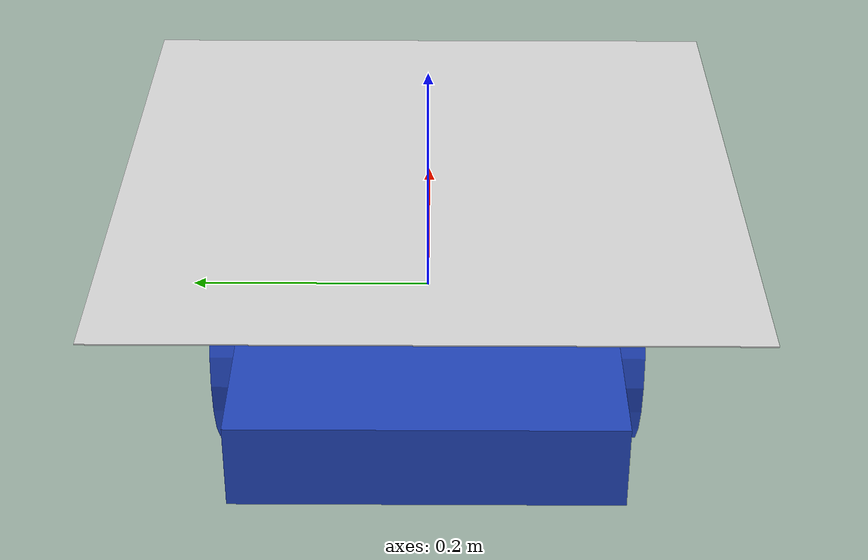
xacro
<?xml version="1.0" ?>

<robot name="m2wr" xmlns:xacro="https://www.ros.org/wiki/xacro" >

  <xacro:include filename="$(find m2wr_description)/urdf/materials.xacro" />

  <xacro:include filename="$(find m2wr_description)/urdf/gazebo.xacro" />

  <xacro:include filename="$(find m2wr_description)/urdf/macro.xacro" />

  <!--chassis -->

  <link name="link_chassis">

    <!-- pose and inertial -->
    <pose>0 0 0.1 0 0 0</pose>

    <inertial>
      <mass value="5"/>
      <origin rpy="0 0 0" xyz="0 0 0.1"/>
      <inertia ixx="0.0395416666667" ixy="0" ixz="0" iyy="0.106208333333" iyz="0" izz="0.106208333333"/>
    </inertial>

    <collision name="collision_chassis">
      <geometry>
        <box size="0.5 0.3 0.07"/>
      </geometry>
    </collision>

    <visual>
      <origin rpy="0 0 0" xyz="0 0 0"/>
      <geometry>
        <box size="0.5 0.3 0.07"/>
      </geometry>
      <material name="blue"/>
    </visual>

    <!-- caster front -->
    <collision name="caster_front_collision">
      <origin rpy=" 0 0 0" xyz="0.35 0 -0.05"/>
      <geometry>
        <sphere radius="0.05"/>
      </geometry>
      <surface>
        <friction>
          <ode>
            <mu>0</mu>
            <mu2>0</mu2>
            <slip1>1.0</slip1>
            <slip2>1.0</slip2>
          </ode>
        </friction>
      </surface>
    </collision>
    <visual name="caster_front_visual">
      <origin rpy=" 0 0 0" xyz="0.2 0 -0.05"/>
      <geometry>
        <sphere radius="0.05"/>
      </geometry>
    </visual>
    </link>

    <!-- Define a new link for the ArUco marker -->
<link name="aruco_link">
  <origin xyz="0 0 0.1" rpy="0 0 0"/>

  <collision>
    <origin xyz="0 0 0" rpy="0 0 0"/>
    <geometry>
      <box size="0.5 0.5 0.001"/>
    </geometry>
  </collision>

  <visual>
    <origin rpy="0 0 0" xyz="0 0 0"/>
    <geometry>
     <box size="0.5 0.5 0.001"/>
    </geometry>
    <material name="white"/>
  </visual>

</link>

<joint name="aruco_marker_joint" type="fixed">
  <parent link="link_chassis"/>
  <child link="aruco_link"/>

  <origin xyz="0 0 0.11" rpy="0 0 0"/>
</joint>

   <!-- Create wheel right -->

   <xacro:link_wheel name="link_right_wheel" />
   <xacro:joint_wheel name="joint_right_wheel"  child="link_right_wheel"  origin_xyz="-0.05 0.15 0"  />

  <!-- Left Wheel link -->

  <xacro:link_wheel name="link_left_wheel" />
  <xacro:joint_wheel name="joint_left_wheel"   child="link_left_wheel"   origin_xyz="-0.05 -0.15 0"  />

  <!-- sensor -->

  <link name="sensor_laser">

    <xacro:cylinder_inertia mass="1" r="0.05" l="0.1" />

    <visual>
      <origin xyz="0 0 0" rpy="0 0 0" />
      <geometry>
        <cylinder radius="0.05" length="0.1"/>
      </geometry>
      <material name="white" />
    </visual>

    <collision>
      <origin xyz="0 0 0" rpy="0 0 0"/>
      <geometry>
        <cylinder radius="0.05" length="0.1"/>
      </geometry>
    </collision>
  </link>

  <joint name="joint_sensor_laser" type="fixed">
    <origin xyz="0.09 0 0.05" rpy="0 0 0"/>
    <parent link="link_chassis"/>
    <child link="sensor_laser"/>
  </joint>

</robot>

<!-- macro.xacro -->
<robot xmlns:xacro="http://www.ros.org/wiki/xacro">
    <xacro:macro name="link_wheel" params="name">
        <link name="${name}">
            <inertial>
              <mass value="0.2"/>
              <origin rpy="0 1.5707 1.5707" xyz="0 0 0"/>
              <inertia ixx="0.000526666666667" ixy="0" ixz="0" iyy="0.000526666666667" iyz="0" izz="0.001"/>
            </inertial>
            <collision name="link_right_wheel_collision">
              <origin rpy="0 1.5707 1.5707" xyz="0 0 0"/>
              <geometry>
                <cylinder length="0.04" radius="0.1"/>
              </geometry>
            </collision>
            <visual name="${name}_visual">
              <origin rpy="0 1.5707 1.5707" xyz="0 0 0"/>
              <geometry>
                <cylinder length="0.04" radius="0.1"/>
              </geometry>
            </visual>
        </link>
    </xacro:macro>

    <xacro:macro name="joint_wheel" params="name child origin_xyz">
      <joint name="${name}" type="continuous">
        <origin rpy="0 0 0" xyz="${origin_xyz}"/>
        <child link="${child}"/>
        <parent link="link_chassis"/>
        <axis rpy="0 0 0" xyz="0 1 0"/>
        <limit effort="10000" velocity="1000"/>
        <joint_properties damping="1.0" friction="1.0"/>
      </joint>
    </xacro:macro>

    <xacro:macro name="cylinder_inertia" params="mass r l">
    <inertia ixx="${mass*(3*r*r+l*l)/12}" ixy = "0" ixz = "0"
                iyy="${mass*(3*r*r+l*l)/12}" iyz = "0" izz="${mass*(r*r)/2}" />
</xacro:macro>

</robot>
